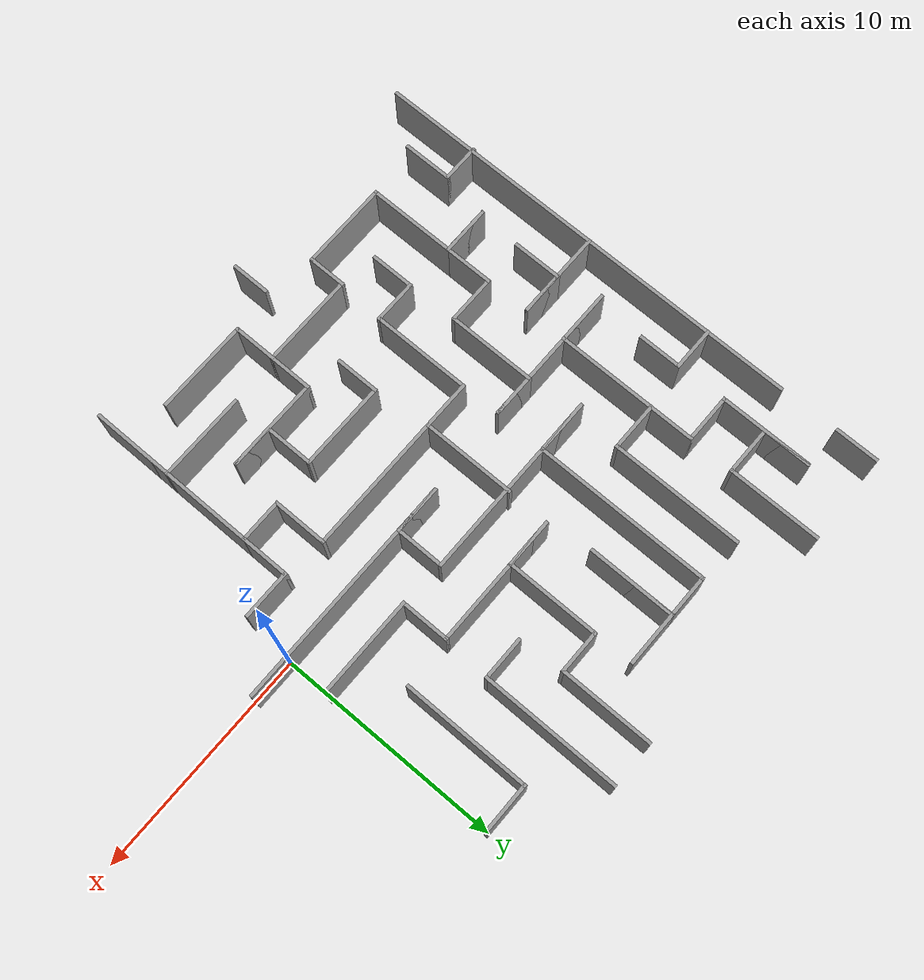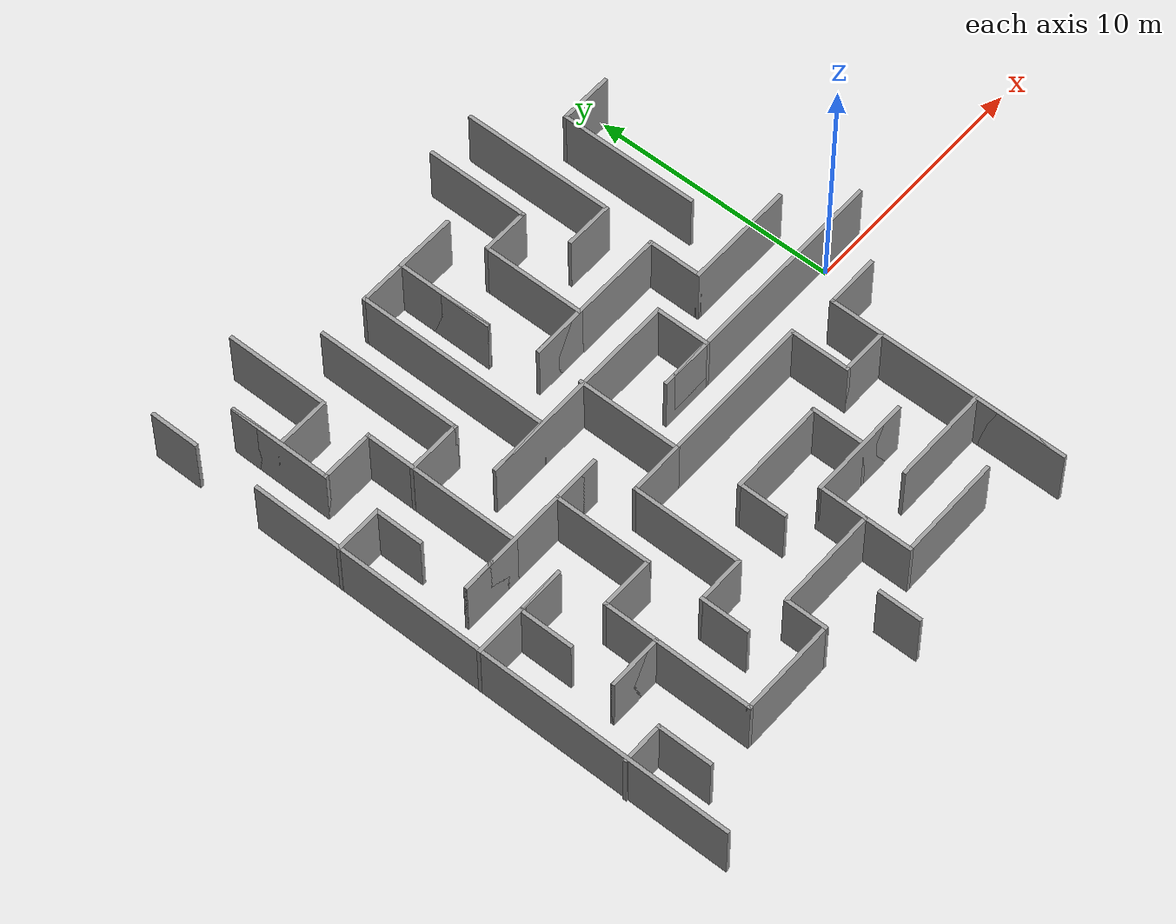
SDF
<sdf version="1.7">
 <model name="maze_model">
  <pose>0.068092 0.23364 0 0 -0 0</pose>
  <link name="Wall_100">
   <collision name="Wall_100_Collision">
    <geometry><box><size>2.25 0.15 2.5</size></box></geometry>
    <pose>0 0 1.25 0 -0 0</pose>
   </collision>
   <visual name="Wall_100_Visual">
    <pose>0 0 1.25 0 -0 0</pose>
    <geometry><box><size>2.25 0.15 2.5</size></box></geometry>
    <material>
     <script><uri>file://media/materials/scripts/gazebo.material</uri><name>Gazebo/Grey</name></script>
     <ambient>1 1 1 1</ambient>
    </material>
    <meta><layer>0</layer></meta>
   </visual>
   <pose>-9.14508 4.06765 0 0 -0 3.14159</pose>
  </link>
  <link name="Wall_101">
   <collision name="Wall_101_Collision">
    <geometry><box><size>6 0.15 2.5</size></box></geometry>
    <pose>0 0 1.25 0 -0 0</pose>
   </collision>
   <visual name="Wall_101_Visual">
    <pose>0 0 1.25 0 -0 0</pose>
    <geometry><box><size>6 0.15 2.5</size></box></geometry>
    <material>
     <script><uri>file://media/materials/scripts/gazebo.material</uri><name>Gazebo/Grey</name></script>
     <ambient>1 1 1 1</ambient>
    </material>
    <meta><layer>0</layer></meta>
   </visual>
   <pose>-7.27008 4.06765 0 0 -0 0</pose>
  </link>
  <link name="Wall_102">
   <collision name="Wall_102_Collision">
    <geometry><box><size>2.25 0.15 2.5</size></box></geometry>
    <pose>0 0 1.25 0 -0 0</pose>
   </collision>
   <visual name="Wall_102_Visual">
    <pose>0 0 1.25 0 -0 0</pose>
    <geometry><box><size>2.25 0.15 2.5</size></box></geometry>
    <material>
     <script><uri>file://media/materials/scripts/gazebo.material</uri><name>Gazebo/Grey</name></script>
     <ambient>1 1 1 1</ambient>
    </material>
    <meta><layer>0</layer></meta>
   </visual>
   <pose>-4.34508 3.01765 0 0 -0 -1.5708</pose>
  </link>
  <link name="Wall_103">
   <collision name="Wall_103_Collision">
    <geometry><box><size>4.5 0.15 2.5</size></box></geometry>
    <pose>0 0 1.25 0 -0 0</pose>
   </collision>
   <visual name="Wall_103_Visual">
    <pose>0 0 1.25 0 -0 0</pose>
    <geometry><box><size>4.5 0.15 2.5</size></box></geometry>
    <material>
     <script><uri>file://media/materials/scripts/gazebo.material</uri><name>Gazebo/Grey</name></script>
     <ambient>1 1 1 1</ambient>
    </material>
    <meta><layer>0</layer></meta>
   </visual>
   <pose>-2.17008 1.96765 0 0 -0 0</pose>
  </link>
  <link name="Wall_109">
   <collision name="Wall_109_Collision">
    <geometry><box><size>2.25 0.15 2.5</size></box></geometry>
    <pose>0 0 1.25 0 -0 0</pose>
   </collision>
   <visual name="Wall_109_Visual">
    <pose>0 0 1.25 0 -0 0</pose>
    <geometry><box><size>2.25 0.15 2.5</size></box></geometry>
    <material>
     <script><uri>file://media/materials/scripts/gazebo.material</uri><name>Gazebo/Grey</name></script>
     <ambient>1 1 1 1</ambient>
    </material>
    <meta><layer>0</layer></meta>
   </visual>
   <pose>-1.04508 9.76765 0 0 -0 3.14159</pose>
  </link>
  <link name="Wall_110">
   <collision name="Wall_110_Collision">
    <geometry><box><size>5.75 0.15 2.5</size></box></geometry>
    <pose>0 0 1.25 0 -0 0</pose>
   </collision>
   <visual name="Wall_110_Visual">
    <pose>0 0 1.25 0 -0 0</pose>
    <geometry><box><size>5.75 0.15 2.5</size></box></geometry>
    <material>
     <script><uri>file://media/materials/scripts/gazebo.material</uri><name>Gazebo/Grey</name></script>
     <ambient>1 1 1 1</ambient>
    </material>
    <meta><layer>0</layer></meta>
   </visual>
   <pose>-2.09508 6.96765 0 0 -0 -1.5708</pose>
  </link>
  <link name="Wall_112">
   <collision name="Wall_112_Collision">
    <geometry><box><size>6.25 0.15 2.5</size></box></geometry>
    <pose>0 0 1.25 0 -0 0</pose>
   </collision>
   <visual name="Wall_112_Visual">
    <pose>0 0 1.25 0 -0 0</pose>
    <geometry><box><size>6.25 0.15 2.5</size></box></geometry>
    <material>
     <script><uri>file://media/materials/scripts/gazebo.material</uri><name>Gazebo/Grey</name></script>
     <ambient>1 1 1 1</ambient>
    </material>
    <meta><layer>0</layer></meta>
   </visual>
   <pose>-4.21466 9.21765 0 0 -0 -1.5708</pose>
  </link>
  <link name="Wall_113">
   <collision name="Wall_113_Collision">
    <geometry><box><size>2 0.15 2.5</size></box></geometry>
    <pose>0 0 1.25 0 -0 0</pose>
   </collision>
   <visual name="Wall_113_Visual">
    <pose>0 0 1.25 0 -0 0</pose>
    <geometry><box><size>2 0.15 2.5</size></box></geometry>
    <material>
     <script><uri>file://media/materials/scripts/gazebo.material</uri><name>Gazebo/Grey</name></script>
     <ambient>1 1 1 1</ambient>
    </material>
    <meta><layer>0</layer></meta>
   </visual>
   <pose>-5.13966 6.16765 0 0 -0 3.14159</pose>
  </link>
  <link name="Wall_19">
   <collision name="Wall_19_Collision">
    <geometry><box><size>20 0.15 2.5</size></box></geometry>
    <pose>0 0 1.25 0 -0 0</pose>
   </collision>
   <visual name="Wall_19_Visual">
    <pose>0 0 1.25 0 -0 0</pose>
    <geometry><box><size>20 0.15 2.5</size></box></geometry>
    <material>
     <script><uri>file://media/materials/scripts/gazebo.material</uri><name>Gazebo/Grey</name></script>
     <ambient>1 1 1 1</ambient>
    </material>
    <meta><layer>0</layer></meta>
   </visual>
   <pose>-20.265 -2.3346 0 0 -0 1.5708</pose>
  </link>
  <link name="Wall_21">
   <collision name="Wall_21_Collision">
    <geometry><box><size>2 0.15 2.5</size></box></geometry>
    <pose>0 0 1.25 0 -0 0</pose>
   </collision>
   <visual name="Wall_21_Visual">
    <pose>0 0 1.25 0 -0 0</pose>
    <geometry><box><size>2 0.15 2.5</size></box></geometry>
    <material>
     <script><uri>file://media/materials/scripts/gazebo.material</uri><name>Gazebo/Grey</name></script>
     <ambient>1 1 1 1</ambient>
    </material>
    <meta><layer>0</layer></meta>
   </visual>
   <pose>-20.335 11.2196 0 0 -0 -1.5708</pose>
  </link>
  <link name="Wall_23">
   <collision name="Wall_23_Collision">
    <geometry><box><size>4.25 0.15 2.5</size></box></geometry>
    <pose>0 0 1.25 0 -0 0</pose>
   </collision>
   <visual name="Wall_23_Visual">
    <pose>0 0 1.25 0 -0 0</pose>
    <geometry><box><size>4.25 0.15 2.5</size></box></geometry>
    <material>
     <script><uri>file://media/materials/scripts/gazebo.material</uri><name>Gazebo/Grey</name></script>
     <ambient>1 1 1 1</ambient>
    </material>
    <meta><layer>0</layer></meta>
   </visual>
   <pose>-16.3972 10.2177 0 0 -0 -1.5708</pose>
  </link>
  <link name="Wall_24">
   <collision name="Wall_24_Collision">
    <geometry><box><size>2.25 0.15 2.5</size></box></geometry>
    <pose>0 0 1.25 0 -0 0</pose>
   </collision>
   <visual name="Wall_24_Visual">
    <pose>0 0 1.25 0 -0 0</pose>
    <geometry><box><size>2.25 0.15 2.5</size></box></geometry>
    <material>
     <script><uri>file://media/materials/scripts/gazebo.material</uri><name>Gazebo/Grey</name></script>
     <ambient>1 1 1 1</ambient>
    </material>
    <meta><layer>0</layer></meta>
   </visual>
   <pose>-17.4472 8.16765 0 0 -0 3.14159</pose>
  </link>
  <link name="Wall_25">
   <collision name="Wall_25_Collision">
    <geometry><box><size>2.25 0.15 2.5</size></box></geometry>
    <pose>0 0 1.25 0 -0 0</pose>
   </collision>
   <visual name="Wall_25_Visual">
    <pose>0 0 1.25 0 -0 0</pose>
    <geometry><box><size>2.25 0.15 2.5</size></box></geometry>
    <material>
     <script><uri>file://media/materials/scripts/gazebo.material</uri><name>Gazebo/Grey</name></script>
     <ambient>1 1 1 1</ambient>
    </material>
    <meta><layer>0</layer></meta>
   </visual>
   <pose>-18.4972 9.21765 0 0 -0 1.5708</pose>
  </link>
  <link name="Wall_26">
   <collision name="Wall_26_Collision">
    <geometry><box><size>4.25 0.15 2.5</size></box></geometry>
    <pose>0 0 1.25 0 -0 0</pose>
   </collision>
   <visual name="Wall_26_Visual">
    <pose>0 0 1.25 0 -0 0</pose>
    <geometry><box><size>4.25 0.15 2.5</size></box></geometry>
    <material>
     <script><uri>file://media/materials/scripts/gazebo.material</uri><name>Gazebo/Grey</name></script>
     <ambient>1 1 1 1</ambient>
    </material>
    <meta><layer>0</layer></meta>
   </visual>
   <pose>-18.4972 8.21765 0 0 -0 -1.5708</pose>
  </link>
  <link name="Wall_27">
   <collision name="Wall_27_Collision">
    <geometry><box><size>2.25 0.15 2.5</size></box></geometry>
    <pose>0 0 1.25 0 -0 0</pose>
   </collision>
   <visual name="Wall_27_Visual">
    <pose>0 0 1.25 0 -0 0</pose>
    <geometry><box><size>2.25 0.15 2.5</size></box></geometry>
    <material>
     <script><uri>file://media/materials/scripts/gazebo.material</uri><name>Gazebo/Grey</name></script>
     <ambient>1 1 1 1</ambient>
    </material>
    <meta><layer>0</layer></meta>
   </visual>
   <pose>-17.4472 6.16765 0 0 -0 0</pose>
  </link>
  <link name="Wall_28">
   <collision name="Wall_28_Collision">
    <geometry><box><size>6.5 0.15 2.5</size></box></geometry>
    <pose>0 0 1.25 0 -0 0</pose>
   </collision>
   <visual name="Wall_28_Visual">
    <pose>0 0 1.25 0 -0 0</pose>
    <geometry><box><size>6.5 0.15 2.5</size></box></geometry>
    <material>
     <script><uri>file://media/materials/scripts/gazebo.material</uri><name>Gazebo/Grey</name></script>
     <ambient>1 1 1 1</ambient>
    </material>
    <meta><layer>0</layer></meta>
   </visual>
   <pose>-16.3972 2.99265 0 0 -0 -1.5708</pose>
  </link>
  <link name="Wall_29">
   <collision name="Wall_29_Collision">
    <geometry><box><size>2.5 0.15 2.5</size></box></geometry>
    <pose>0 0 1.25 0 -0 0</pose>
   </collision>
   <visual name="Wall_29_Visual">
    <pose>0 0 1.25 0 -0 0</pose>
    <geometry><box><size>2.5 0.15 2.5</size></box></geometry>
    <material>
     <script><uri>file://media/materials/scripts/gazebo.material</uri><name>Gazebo/Grey</name></script>
     <ambient>1 1 1 1</ambient>
    </material>
    <meta><layer>0</layer></meta>
   </visual>
   <pose>-17.5722 -0.182347 0 0 -0 3.14159</pose>
  </link>
  <link name="Wall_30">
   <collision name="Wall_30_Collision">
    <geometry><box><size>6.5 0.15 2.5</size></box></geometry>
    <pose>0 0 1.25 0 -0 0</pose>
   </collision>
   <visual name="Wall_30_Visual">
    <pose>0 0 1.25 0 -0 0</pose>
    <geometry><box><size>6.5 0.15 2.5</size></box></geometry>
    <material>
     <script><uri>file://media/materials/scripts/gazebo.material</uri><name>Gazebo/Grey</name></script>
     <ambient>1 1 1 1</ambient>
    </material>
    <meta><layer>0</layer></meta>
   </visual>
   <pose>-15.5722 -0.182347 0 0 -0 0</pose>
  </link>
  <link name="Wall_31">
   <collision name="Wall_31_Collision">
    <geometry><box><size>2 0.15 2.5</size></box></geometry>
    <pose>0 0 1.25 0 -0 0</pose>
   </collision>
   <visual name="Wall_31_Visual">
    <pose>0 0 1.25 0 -0 0</pose>
    <geometry><box><size>2 0.15 2.5</size></box></geometry>
    <material>
     <script><uri>file://media/materials/scripts/gazebo.material</uri><name>Gazebo/Grey</name></script>
     <ambient>1 1 1 1</ambient>
    </material>
    <meta><layer>0</layer></meta>
   </visual>
   <pose>-13.3222 -0.182347 0 0 -0 3.14159</pose>
  </link>
  <link name="Wall_32">
   <collision name="Wall_32_Collision">
    <geometry><box><size>4 0.15 2.5</size></box></geometry>
    <pose>0 0 1.25 0 -0 0</pose>
   </collision>
   <visual name="Wall_32_Visual">
    <pose>0 0 1.25 0 -0 0</pose>
    <geometry><box><size>4 0.15 2.5</size></box></geometry>
    <material>
     <script><uri>file://media/materials/scripts/gazebo.material</uri><name>Gazebo/Grey</name></script>
     <ambient>1 1 1 1</ambient>
    </material>
    <meta><layer>0</layer></meta>
   </visual>
   <pose>-14.2472 -2.10735 0 0 -0 -1.5708</pose>
  </link>
  <link name="Wall_33">
   <collision name="Wall_33_Collision">
    <geometry><box><size>2.25 0.15 2.5</size></box></geometry>
    <pose>0 0 1.25 0 -0 0</pose>
   </collision>
   <visual name="Wall_33_Visual">
    <pose>0 0 1.25 0 -0 0</pose>
    <geometry><box><size>2.25 0.15 2.5</size></box></geometry>
    <material>
     <script><uri>file://media/materials/scripts/gazebo.material</uri><name>Gazebo/Grey</name></script>
     <ambient>1 1 1 1</ambient>
    </material>
    <meta><layer>0</layer></meta>
   </visual>
   <pose>-15.2972 -4.03235 0 0 -0 3.14159</pose>
  </link>
  <link name="Wall_34">
   <collision name="Wall_34_Collision">
    <geometry><box><size>2.25 0.15 2.5</size></box></geometry>
    <pose>0 0 1.25 0 -0 0</pose>
   </collision>
   <visual name="Wall_34_Visual">
    <pose>0 0 1.25 0 -0 0</pose>
    <geometry><box><size>2.25 0.15 2.5</size></box></geometry>
    <material>
     <script><uri>file://media/materials/scripts/gazebo.material</uri><name>Gazebo/Grey</name></script>
     <ambient>1 1 1 1</ambient>
    </material>
    <meta><layer>0</layer></meta>
   </visual>
   <pose>-16.3472 -5.08235 0 0 -0 -1.5708</pose>
  </link>
  <link name="Wall_35">
   <collision name="Wall_35_Collision">
    <geometry><box><size>2.25 0.15 2.5</size></box></geometry>
    <pose>0 0 1.25 0 -0 0</pose>
   </collision>
   <visual name="Wall_35_Visual">
    <pose>0 0 1.25 0 -0 0</pose>
    <geometry><box><size>2.25 0.15 2.5</size></box></geometry>
    <material>
     <script><uri>file://media/materials/scripts/gazebo.material</uri><name>Gazebo/Grey</name></script>
     <ambient>1 1 1 1</ambient>
    </material>
    <meta><layer>0</layer></meta>
   </visual>
   <pose>-17.3972 -6.13235 0 0 -0 3.14159</pose>
  </link>
  <link name="Wall_36">
   <collision name="Wall_36_Collision">
    <geometry><box><size>2.25 0.15 2.5</size></box></geometry>
    <pose>0 0 1.25 0 -0 0</pose>
   </collision>
   <visual name="Wall_36_Visual">
    <pose>0 0 1.25 0 -0 0</pose>
    <geometry><box><size>2.25 0.15 2.5</size></box></geometry>
    <material>
     <script><uri>file://media/materials/scripts/gazebo.material</uri><name>Gazebo/Grey</name></script>
     <ambient>1 1 1 1</ambient>
    </material>
    <meta><layer>0</layer></meta>
   </visual>
   <pose>-17.3972 -6.13235 0 0 -0 0</pose>
  </link>
  <link name="Wall_37">
   <collision name="Wall_37_Collision">
    <geometry><box><size>4 0.15 2.5</size></box></geometry>
    <pose>0 0 1.25 0 -0 0</pose>
   </collision>
   <visual name="Wall_37_Visual">
    <pose>0 0 1.25 0 -0 0</pose>
    <geometry><box><size>4 0.15 2.5</size></box></geometry>
    <material>
     <script><uri>file://media/materials/scripts/gazebo.material</uri><name>Gazebo/Grey</name></script>
     <ambient>1 1 1 1</ambient>
    </material>
    <meta><layer>0</layer></meta>
   </visual>
   <pose>-16.3472 -8.05735 0 0 -0 -1.5708</pose>
  </link>
  <link name="Wall_38">
   <collision name="Wall_38_Collision">
    <geometry><box><size>4 0.15 2.5</size></box></geometry>
    <pose>0 0 1.25 0 -0 0</pose>
   </collision>
   <visual name="Wall_38_Visual">
    <pose>0 0 1.25 0 -0 0</pose>
    <geometry><box><size>4 0.15 2.5</size></box></geometry>
    <material>
     <script><uri>file://media/materials/scripts/gazebo.material</uri><name>Gazebo/Grey</name></script>
     <ambient>1 1 1 1</ambient>
    </material>
    <meta><layer>0</layer></meta>
   </visual>
   <pose>-14.4222 -9.98235 0 0 -0 0</pose>
  </link>
  <link name="Wall_39">
   <collision name="Wall_39_Collision">
    <geometry><box><size>1.75 0.15 2.5</size></box></geometry>
    <pose>0 0 1.25 0 -0 0</pose>
   </collision>
   <visual name="Wall_39_Visual">
    <pose>0 0 1.25 0 -0 0</pose>
    <geometry><box><size>1.75 0.15 2.5</size></box></geometry>
    <material>
     <script><uri>file://media/materials/scripts/gazebo.material</uri><name>Gazebo/Grey</name></script>
     <ambient>1 1 1 1</ambient>
    </material>
    <meta><layer>0</layer></meta>
   </visual>
   <pose>-12.4972 -9.18235 0 0 -0 1.5708</pose>
  </link>
  <link name="Wall_40">
   <collision name="Wall_40_Collision">
    <geometry><box><size>4.25 0.15 2.5</size></box></geometry>
    <pose>0 0 1.25 0 -0 0</pose>
   </collision>
   <visual name="Wall_40_Visual">
    <pose>0 0 1.25 0 -0 0</pose>
    <geometry><box><size>4.25 0.15 2.5</size></box></geometry>
    <material>
     <script><uri>file://media/materials/scripts/gazebo.material</uri><name>Gazebo/Grey</name></script>
     <ambient>1 1 1 1</ambient>
    </material>
    <meta><layer>0</layer></meta>
   </visual>
   <pose>-10.4472 -8.38235 0 0 -0 0</pose>
  </link>
  <link name="Wall_41">
   <collision name="Wall_41_Collision">
    <geometry><box><size>2 0.15 2.5</size></box></geometry>
    <pose>0 0 1.25 0 -0 0</pose>
   </collision>
   <visual name="Wall_41_Visual">
    <pose>0 0 1.25 0 -0 0</pose>
    <geometry><box><size>2 0.15 2.5</size></box></geometry>
    <material>
     <script><uri>file://media/materials/scripts/gazebo.material</uri><name>Gazebo/Grey</name></script>
     <ambient>1 1 1 1</ambient>
    </material>
    <meta><layer>0</layer></meta>
   </visual>
   <pose>-8.39718 -9.30735 0 0 -0 -1.5708</pose>
  </link>
  <link name="Wall_42">
   <collision name="Wall_42_Collision">
    <geometry><box><size>4.25 0.15 2.5</size></box></geometry>
    <pose>0 0 1.25 0 -0 0</pose>
   </collision>
   <visual name="Wall_42_Visual">
    <pose>0 0 1.25 0 -0 0</pose>
    <geometry><box><size>4.25 0.15 2.5</size></box></geometry>
    <material>
     <script><uri>file://media/materials/scripts/gazebo.material</uri><name>Gazebo/Grey</name></script>
     <ambient>1 1 1 1</ambient>
    </material>
    <meta><layer>0</layer></meta>
   </visual>
   <pose>-6.34718 -10.2323 0 0 -0 0</pose>
  </link>
  <link name="Wall_44">
   <collision name="Wall_44_Collision">
    <geometry><box><size>2 0.15 2.5</size></box></geometry>
    <pose>0 0 1.25 0 -0 0</pose>
   </collision>
   <visual name="Wall_44_Visual">
    <pose>0 0 1.25 0 -0 0</pose>
    <geometry><box><size>2 0.15 2.5</size></box></geometry>
    <material>
     <script><uri>file://media/materials/scripts/gazebo.material</uri><name>Gazebo/Grey</name></script>
     <ambient>1 1 1 1</ambient>
    </material>
    <meta><layer>0</layer></meta>
   </visual>
   <pose>-8.39718 -7.45735 0 0 -0 1.5708</pose>
  </link>
  <link name="Wall_45">
   <collision name="Wall_45_Collision">
    <geometry><box><size>4.25 0.15 2.5</size></box></geometry>
    <pose>0 0 1.25 0 -0 0</pose>
   </collision>
   <visual name="Wall_45_Visual">
    <pose>0 0 1.25 0 -0 0</pose>
    <geometry><box><size>4.25 0.15 2.5</size></box></geometry>
    <material>
     <script><uri>file://media/materials/scripts/gazebo.material</uri><name>Gazebo/Grey</name></script>
     <ambient>1 1 1 1</ambient>
    </material>
    <meta><layer>0</layer></meta>
   </visual>
   <pose>-6.34718 -6.53235 0 0 -0 0</pose>
  </link>
  <link name="Wall_46">
   <collision name="Wall_46_Collision">
    <geometry><box><size>2 0.15 2.5</size></box></geometry>
    <pose>0 0 1.25 0 -0 0</pose>
   </collision>
   <visual name="Wall_46_Visual">
    <pose>0 0 1.25 0 -0 0</pose>
    <geometry><box><size>2 0.15 2.5</size></box></geometry>
    <material>
     <script><uri>file://media/materials/scripts/gazebo.material</uri><name>Gazebo/Grey</name></script>
     <ambient>1 1 1 1</ambient>
    </material>
    <meta><layer>0</layer></meta>
   </visual>
   <pose>-5.22218 -6.53235 0 0 -0 3.14159</pose>
  </link>
  <link name="Wall_47">
   <collision name="Wall_47_Collision">
    <geometry><box><size>2.25 0.15 2.5</size></box></geometry>
    <pose>0 0 1.25 0 -0 0</pose>
   </collision>
   <visual name="Wall_47_Visual">
    <pose>0 0 1.25 0 -0 0</pose>
    <geometry><box><size>2.25 0.15 2.5</size></box></geometry>
    <material>
     <script><uri>file://media/materials/scripts/gazebo.material</uri><name>Gazebo/Grey</name></script>
     <ambient>1 1 1 1</ambient>
    </material>
    <meta><layer>0</layer></meta>
   </visual>
   <pose>-6.14718 -5.48235 0 0 -0 1.5708</pose>
  </link>
  <link name="Wall_48">
   <collision name="Wall_48_Collision">
    <geometry><box><size>4 0.15 2.5</size></box></geometry>
    <pose>0 0 1.25 0 -0 0</pose>
   </collision>
   <visual name="Wall_48_Visual">
    <pose>0 0 1.25 0 -0 0</pose>
    <geometry><box><size>4 0.15 2.5</size></box></geometry>
    <material>
     <script><uri>file://media/materials/scripts/gazebo.material</uri><name>Gazebo/Grey</name></script>
     <ambient>1 1 1 1</ambient>
    </material>
    <meta><layer>0</layer></meta>
   </visual>
   <pose>-8.07218 -4.43235 0 0 -0 3.14159</pose>
  </link>
  <link name="Wall_49">
   <collision name="Wall_49_Collision">
    <geometry><box><size>2 0.15 2.5</size></box></geometry>
    <pose>0 0 1.25 0 -0 0</pose>
   </collision>
   <visual name="Wall_49_Visual">
    <pose>0 0 1.25 0 -0 0</pose>
    <geometry><box><size>2 0.15 2.5</size></box></geometry>
    <material>
     <script><uri>file://media/materials/scripts/gazebo.material</uri><name>Gazebo/Grey</name></script>
     <ambient>1 1 1 1</ambient>
    </material>
    <meta><layer>0</layer></meta>
   </visual>
   <pose>-9.99718 -5.35735 0 0 -0 -1.5708</pose>
  </link>
  <link name="Wall_51">
   <collision name="Wall_51_Collision">
    <geometry><box><size>2 0.15 2.5</size></box></geometry>
    <pose>0 0 1.25 0 -0 0</pose>
   </collision>
   <visual name="Wall_51_Visual">
    <pose>0 0 1.25 0 -0 0</pose>
    <geometry><box><size>2 0.15 2.5</size></box></geometry>
    <material>
     <script><uri>file://media/materials/scripts/gazebo.material</uri><name>Gazebo/Grey</name></script>
     <ambient>1 1 1 1</ambient>
    </material>
    <meta><layer>0</layer></meta>
   </visual>
   <pose>-19.3484 3.96139 0 0 -0 0</pose>
  </link>
  <link name="Wall_52">
   <collision name="Wall_52_Collision">
    <geometry><box><size>2 0.15 2.5</size></box></geometry>
    <pose>0 0 1.25 0 -0 0</pose>
   </collision>
   <visual name="Wall_52_Visual">
    <pose>0 0 1.25 0 -0 0</pose>
    <geometry><box><size>2 0.15 2.5</size></box></geometry>
    <material>
     <script><uri>file://media/materials/scripts/gazebo.material</uri><name>Gazebo/Grey</name></script>
     <ambient>1 1 1 1</ambient>
    </material>
    <meta><layer>0</layer></meta>
   </visual>
   <pose>-18.4234 3.03639 0 0 -0 -1.5708</pose>
  </link>
  <link name="Wall_54">
   <collision name="Wall_54_Collision">
    <geometry><box><size>4 0.15 2.5</size></box></geometry>
    <pose>0 0 1.25 0 -0 0</pose>
   </collision>
   <visual name="Wall_54_Visual">
    <pose>0 0 1.25 0 -0 0</pose>
    <geometry><box><size>4 0.15 2.5</size></box></geometry>
    <material>
     <script><uri>file://media/materials/scripts/gazebo.material</uri><name>Gazebo/Grey</name></script>
     <ambient>1 1 1 1</ambient>
    </material>
    <meta><layer>0</layer></meta>
   </visual>
   <pose>-18.3484 -2.06834 0 0 -0 0</pose>
  </link>
  <link name="Wall_55">
   <collision name="Wall_55_Collision">
    <geometry><box><size>2 0.15 2.5</size></box></geometry>
    <pose>0 0 1.25 0 -0 0</pose>
   </collision>
   <visual name="Wall_55_Visual">
    <pose>0 0 1.25 0 -0 0</pose>
    <geometry><box><size>2 0.15 2.5</size></box></geometry>
    <material>
     <script><uri>file://media/materials/scripts/gazebo.material</uri><name>Gazebo/Grey</name></script>
     <ambient>1 1 1 1</ambient>
    </material>
    <meta><layer>0</layer></meta>
   </visual>
   <pose>-17.3484 -2.06834 0 0 -0 3.14159</pose>
  </link>
  <link name="Wall_56">
   <collision name="Wall_56_Collision">
    <geometry><box><size>2.25 0.15 2.5</size></box></geometry>
    <pose>0 0 1.25 0 -0 0</pose>
   </collision>
   <visual name="Wall_56_Visual">
    <pose>0 0 1.25 0 -0 0</pose>
    <geometry><box><size>2.25 0.15 2.5</size></box></geometry>
    <material>
     <script><uri>file://media/materials/scripts/gazebo.material</uri><name>Gazebo/Grey</name></script>
     <ambient>1 1 1 1</ambient>
    </material>
    <meta><layer>0</layer></meta>
   </visual>
   <pose>-18.2734 -3.11834 0 0 -0 -1.5708</pose>
  </link>
  <link name="Wall_58">
   <collision name="Wall_58_Collision">
    <geometry><box><size>1.75 0.15 2.5</size></box></geometry>
    <pose>0 0 1.25 0 -0 0</pose>
   </collision>
   <visual name="Wall_58_Visual">
    <pose>0 0 1.25 0 -0 0</pose>
    <geometry><box><size>1.75 0.15 2.5</size></box></geometry>
    <material>
     <script><uri>file://media/materials/scripts/gazebo.material</uri><name>Gazebo/Grey</name></script>
     <ambient>1 1 1 1</ambient>
    </material>
    <meta><layer>0</layer></meta>
   </visual>
   <pose>-19.535 -8.22113 0 0 -0 0</pose>
  </link>
  <link name="Wall_59">
   <collision name="Wall_59_Collision">
    <geometry><box><size>2.25 0.15 2.5</size></box></geometry>
    <pose>0 0 1.25 0 -0 0</pose>
   </collision>
   <visual name="Wall_59_Visual">
    <pose>0 0 1.25 0 -0 0</pose>
    <geometry><box><size>2.25 0.15 2.5</size></box></geometry>
    <material>
     <script><uri>file://media/materials/scripts/gazebo.material</uri><name>Gazebo/Grey</name></script>
     <ambient>1 1 1 1</ambient>
    </material>
    <meta><layer>0</layer></meta>
   </visual>
   <pose>-18.735 -9.27113 0 0 -0 -1.5708</pose>
  </link>
  <link name="Wall_61">
   <collision name="Wall_61_Collision">
    <geometry><box><size>6 0.15 2.5</size></box></geometry>
    <pose>0 0 1.25 0 -0 0</pose>
   </collision>
   <visual name="Wall_61_Visual">
    <pose>0 0 1.25 0 -0 0</pose>
    <geometry><box><size>6 0.15 2.5</size></box></geometry>
    <material>
     <script><uri>file://media/materials/scripts/gazebo.material</uri><name>Gazebo/Grey</name></script>
     <ambient>1 1 1 1</ambient>
    </material>
    <meta><layer>0</layer></meta>
   </visual>
   <pose>-14.3052 7.12765 0 0 -0 -1.5708</pose>
  </link>
  <link name="Wall_62">
   <collision name="Wall_62_Collision">
    <geometry><box><size>2.25 0.15 2.5</size></box></geometry>
    <pose>0 0 1.25 0 -0 0</pose>
   </collision>
   <visual name="Wall_62_Visual">
    <pose>0 0 1.25 0 -0 0</pose>
    <geometry><box><size>2.25 0.15 2.5</size></box></geometry>
    <material>
     <script><uri>file://media/materials/scripts/gazebo.material</uri><name>Gazebo/Grey</name></script>
     <ambient>1 1 1 1</ambient>
    </material>
    <meta><layer>0</layer></meta>
   </visual>
   <pose>-15.3552 4.20265 0 0 -0 3.14159</pose>
  </link>
  <link name="Wall_64">
   <collision name="Wall_64_Collision">
    <geometry><box><size>2.5 0.15 2.5</size></box></geometry>
    <pose>0 0 1.25 0 -0 0</pose>
   </collision>
   <visual name="Wall_64_Visual">
    <pose>0 0 1.25 0 -0 0</pose>
    <geometry><box><size>2.5 0.15 2.5</size></box></geometry>
    <material>
     <script><uri>file://media/materials/scripts/gazebo.material</uri><name>Gazebo/Grey</name></script>
     <ambient>1 1 1 1</ambient>
    </material>
    <meta><layer>0</layer></meta>
   </visual>
   <pose>-9.32744 9.92959 0 0 -0 3.14159</pose>
  </link>
  <link name="Wall_65">
   <collision name="Wall_65_Collision">
    <geometry><box><size>4 0.15 2.5</size></box></geometry>
    <pose>0 0 1.25 0 -0 0</pose>
   </collision>
   <visual name="Wall_65_Visual">
    <pose>0 0 1.25 0 -0 0</pose>
    <geometry><box><size>4 0.15 2.5</size></box></geometry>
    <material>
     <script><uri>file://media/materials/scripts/gazebo.material</uri><name>Gazebo/Grey</name></script>
     <ambient>1 1 1 1</ambient>
    </material>
    <meta><layer>0</layer></meta>
   </visual>
   <pose>-10.5024 8.00459 0 0 -0 -1.5708</pose>
  </link>
  <link name="Wall_66">
   <collision name="Wall_66_Collision">
    <geometry><box><size>4 0.15 2.5</size></box></geometry>
    <pose>0 0 1.25 0 -0 0</pose>
   </collision>
   <visual name="Wall_66_Visual">
    <pose>0 0 1.25 0 -0 0</pose>
    <geometry><box><size>4 0.15 2.5</size></box></geometry>
    <material>
     <script><uri>file://media/materials/scripts/gazebo.material</uri><name>Gazebo/Grey</name></script>
     <ambient>1 1 1 1</ambient>
    </material>
    <meta><layer>0</layer></meta>
   </visual>
   <pose>-10.5024 8.00459 0 0 -0 1.5708</pose>
  </link>
  <link name="Wall_67">
   <collision name="Wall_67_Collision">
    <geometry><box><size>2 0.15 2.5</size></box></geometry>
    <pose>0 0 1.25 0 -0 0</pose>
   </collision>
   <visual name="Wall_67_Visual">
    <pose>0 0 1.25 0 -0 0</pose>
    <geometry><box><size>2 0.15 2.5</size></box></geometry>
    <material>
     <script><uri>file://media/materials/scripts/gazebo.material</uri><name>Gazebo/Grey</name></script>
     <ambient>1 1 1 1</ambient>
    </material>
    <meta><layer>0</layer></meta>
   </visual>
   <pose>-11.4274 9.92959 0 0 -0 3.14159</pose>
  </link>
  <link name="Wall_68">
   <collision name="Wall_68_Collision">
    <geometry><box><size>8 0.15 2.5</size></box></geometry>
    <pose>0 0 1.25 0 -0 0</pose>
   </collision>
   <visual name="Wall_68_Visual">
    <pose>0 0 1.25 0 -0 0</pose>
    <geometry><box><size>8 0.15 2.5</size></box></geometry>
    <material>
     <script><uri>file://media/materials/scripts/gazebo.material</uri><name>Gazebo/Grey</name></script>
     <ambient>1 1 1 1</ambient>
    </material>
    <meta><layer>0</layer></meta>
   </visual>
   <pose>-12.3524 6.00459 0 0 -0 -1.5708</pose>
  </link>
  <link name="Wall_69">
   <collision name="Wall_69_Collision">
    <geometry><box><size>2.5 0.15 2.5</size></box></geometry>
    <pose>0 0 1.25 0 -0 0</pose>
   </collision>
   <visual name="Wall_69_Visual">
    <pose>0 0 1.25 0 -0 0</pose>
    <geometry><box><size>2.5 0.15 2.5</size></box></geometry>
    <material>
     <script><uri>file://media/materials/scripts/gazebo.material</uri><name>Gazebo/Grey</name></script>
     <ambient>1 1 1 1</ambient>
    </material>
    <meta><layer>0</layer></meta>
   </visual>
   <pose>-13.5274 2.07959 0 0 -0 3.14159</pose>
  </link>
  <link name="Wall_70">
   <collision name="Wall_70_Collision">
    <geometry><box><size>8.5 0.15 2.5</size></box></geometry>
    <pose>0 0 1.25 0 -0 0</pose>
   </collision>
   <visual name="Wall_70_Visual">
    <pose>0 0 1.25 0 -0 0</pose>
    <geometry><box><size>8.5 0.15 2.5</size></box></geometry>
    <material>
     <script><uri>file://media/materials/scripts/gazebo.material</uri><name>Gazebo/Grey</name></script>
     <ambient>1 1 1 1</ambient>
    </material>
    <meta><layer>0</layer></meta>
   </visual>
   <pose>-10.5274 2.07959 0 0 -0 0</pose>
  </link>
  <link name="Wall_71">
   <collision name="Wall_71_Collision">
    <geometry><box><size>2.25 0.15 2.5</size></box></geometry>
    <pose>0 0 1.25 0 -0 0</pose>
   </collision>
   <visual name="Wall_71_Visual">
    <pose>0 0 1.25 0 -0 0</pose>
    <geometry><box><size>2.25 0.15 2.5</size></box></geometry>
    <material>
     <script><uri>file://media/materials/scripts/gazebo.material</uri><name>Gazebo/Grey</name></script>
     <ambient>1 1 1 1</ambient>
    </material>
    <meta><layer>0</layer></meta>
   </visual>
   <pose>-6.35244 1.02959 0 0 -0 -1.5708</pose>
  </link>
  <link name="Wall_72">
   <collision name="Wall_72_Collision">
    <geometry><box><size>2.25 0.15 2.5</size></box></geometry>
    <pose>0 0 1.25 0 -0 0</pose>
   </collision>
   <visual name="Wall_72_Visual">
    <pose>0 0 1.25 0 -0 0</pose>
    <geometry><box><size>2.25 0.15 2.5</size></box></geometry>
    <material>
     <script><uri>file://media/materials/scripts/gazebo.material</uri><name>Gazebo/Grey</name></script>
     <ambient>1 1 1 1</ambient>
    </material>
    <meta><layer>0</layer></meta>
   </visual>
   <pose>-7.40244 -0.020406 0 0 -0 3.14159</pose>
  </link>
  <link name="Wall_73">
   <collision name="Wall_73_Collision">
    <geometry><box><size>10.5 0.15 2.5</size></box></geometry>
    <pose>0 0 1.25 0 -0 0</pose>
   </collision>
   <visual name="Wall_73_Visual">
    <pose>0 0 1.25 0 -0 0</pose>
    <geometry><box><size>10.5 0.15 2.5</size></box></geometry>
    <material>
     <script><uri>file://media/materials/scripts/gazebo.material</uri><name>Gazebo/Grey</name></script>
     <ambient>1 1 1 1</ambient>
    </material>
    <meta><layer>0</layer></meta>
   </visual>
   <pose>-3.27744 -0.020406 0 0 -0 0</pose>
  </link>
  <link name="Wall_79">
   <collision name="Wall_79_Collision">
    <geometry><box><size>4.25 0.15 2.5</size></box></geometry>
    <pose>0 0 1.25 0 -0 0</pose>
   </collision>
   <visual name="Wall_79_Visual">
    <pose>0 0 1.25 0 -0 0</pose>
    <geometry><box><size>4.25 0.15 2.5</size></box></geometry>
    <material>
     <script><uri>file://media/materials/scripts/gazebo.material</uri><name>Gazebo/Grey</name></script>
     <ambient>1 1 1 1</ambient>
    </material>
    <meta><layer>0</layer></meta>
   </visual>
   <pose>-10.2444 0.127081 0 0 -0 -1.5708</pose>
  </link>
  <link name="Wall_80">
   <collision name="Wall_80_Collision">
    <geometry><box><size>2.25 0.15 2.5</size></box></geometry>
    <pose>0 0 1.25 0 -0 0</pose>
   </collision>
   <visual name="Wall_80_Visual">
    <pose>0 0 1.25 0 -0 0</pose>
    <geometry><box><size>2.25 0.15 2.5</size></box></geometry>
    <material>
     <script><uri>file://media/materials/scripts/gazebo.material</uri><name>Gazebo/Grey</name></script>
     <ambient>1 1 1 1</ambient>
    </material>
    <meta><layer>0</layer></meta>
   </visual>
   <pose>-11.2944 -1.92292 0 0 -0 3.14159</pose>
  </link>
  <link name="Wall_81">
   <collision name="Wall_81_Collision">
    <geometry><box><size>4.5 0.15 2.5</size></box></geometry>
    <pose>0 0 1.25 0 -0 0</pose>
   </collision>
   <visual name="Wall_81_Visual">
    <pose>0 0 1.25 0 -0 0</pose>
    <geometry><box><size>4.5 0.15 2.5</size></box></geometry>
    <material>
     <script><uri>file://media/materials/scripts/gazebo.material</uri><name>Gazebo/Grey</name></script>
     <ambient>1 1 1 1</ambient>
    </material>
    <meta><layer>0</layer></meta>
   </visual>
   <pose>-12.3444 -4.09792 0 0 -0 -1.5708</pose>
  </link>
  <link name="Wall_82">
   <collision name="Wall_82_Collision">
    <geometry><box><size>2 0.15 2.5</size></box></geometry>
    <pose>0 0 1.25 0 -0 0</pose>
   </collision>
   <visual name="Wall_82_Visual">
    <pose>0 0 1.25 0 -0 0</pose>
    <geometry><box><size>2 0.15 2.5</size></box></geometry>
    <material>
     <script><uri>file://media/materials/scripts/gazebo.material</uri><name>Gazebo/Grey</name></script>
     <ambient>1 1 1 1</ambient>
    </material>
    <meta><layer>0</layer></meta>
   </visual>
   <pose>-13.2694 -6.27292 0 0 -0 3.14159</pose>
  </link>
  <link name="Wall_83">
   <collision name="Wall_83_Collision">
    <geometry><box><size>2 0.15 2.5</size></box></geometry>
    <pose>0 0 1.25 0 -0 0</pose>
   </collision>
   <visual name="Wall_83_Visual">
    <pose>0 0 1.25 0 -0 0</pose>
    <geometry><box><size>2 0.15 2.5</size></box></geometry>
    <material>
     <script><uri>file://media/materials/scripts/gazebo.material</uri><name>Gazebo/Grey</name></script>
     <ambient>1 1 1 1</ambient>
    </material>
    <meta><layer>0</layer></meta>
   </visual>
   <pose>-14.1944 -7.19792 0 0 -0 -1.5708</pose>
  </link>
  <link name="Wall_85">
   <collision name="Wall_85_Collision">
    <geometry><box><size>6.25 0.15 2.5</size></box></geometry>
    <pose>0 0 1.25 0 -0 0</pose>
   </collision>
   <visual name="Wall_85_Visual">
    <pose>0 0 1.25 0 -0 0</pose>
    <geometry><box><size>6.25 0.15 2.5</size></box></geometry>
    <material>
     <script><uri>file://media/materials/scripts/gazebo.material</uri><name>Gazebo/Grey</name></script>
     <ambient>1 1 1 1</ambient>
    </material>
    <meta><layer>0</layer></meta>
   </visual>
   <pose>-7.19439 -1.92292 0 0 -0 0</pose>
  </link>
  <link name="Wall_86">
   <collision name="Wall_86_Collision">
    <geometry><box><size>2.5 0.15 2.5</size></box></geometry>
    <pose>0 0 1.25 0 -0 0</pose>
   </collision>
   <visual name="Wall_86_Visual">
    <pose>0 0 1.25 0 -0 0</pose>
    <geometry><box><size>2.5 0.15 2.5</size></box></geometry>
    <material>
     <script><uri>file://media/materials/scripts/gazebo.material</uri><name>Gazebo/Grey</name></script>
     <ambient>1 1 1 1</ambient>
    </material>
    <meta><layer>0</layer></meta>
   </visual>
   <pose>-4.14439 -3.09792 0 0 -0 -1.5708</pose>
  </link>
  <link name="Wall_87">
   <collision name="Wall_87_Collision">
    <geometry><box><size>2 0.15 2.5</size></box></geometry>
    <pose>0 0 1.25 0 -0 0</pose>
   </collision>
   <visual name="Wall_87_Visual">
    <pose>0 0 1.25 0 -0 0</pose>
    <geometry><box><size>2 0.15 2.5</size></box></geometry>
    <material>
     <script><uri>file://media/materials/scripts/gazebo.material</uri><name>Gazebo/Grey</name></script>
     <ambient>1 1 1 1</ambient>
    </material>
    <meta><layer>0</layer></meta>
   </visual>
   <pose>-3.21939 -4.27292 0 0 -0 0</pose>
  </link>
  <link name="Wall_88">
   <collision name="Wall_88_Collision">
    <geometry><box><size>7.75 0.15 2.5</size></box></geometry>
    <pose>0 0 1.25 0 -0 0</pose>
   </collision>
   <visual name="Wall_88_Visual">
    <pose>0 0 1.25 0 -0 0</pose>
    <geometry><box><size>7.75 0.15 2.5</size></box></geometry>
    <material>
     <script><uri>file://media/materials/scripts/gazebo.material</uri><name>Gazebo/Grey</name></script>
     <ambient>1 1 1 1</ambient>
    </material>
    <meta><layer>0</layer></meta>
   </visual>
   <pose>-2.29439 -8.07292 0 0 -0 -1.5708</pose>
  </link>
  <link name="Wall_89">
   <collision name="Wall_89_Collision">
    <geometry><box><size>3.75 0.15 2.5</size></box></geometry>
    <pose>0 0 1.25 0 -0 0</pose>
   </collision>
   <visual name="Wall_89_Visual">
    <pose>0 0 1.25 0 -0 0</pose>
    <geometry><box><size>3.75 0.15 2.5</size></box></geometry>
    <material>
     <script><uri>file://media/materials/scripts/gazebo.material</uri><name>Gazebo/Grey</name></script>
     <ambient>1 1 1 1</ambient>
    </material>
    <meta><layer>0</layer></meta>
   </visual>
   <pose>-2.29439 -10.0729 0 0 -0 1.5708</pose>
  </link>
  <link name="Wall_90">
   <collision name="Wall_90_Collision">
    <geometry><box><size>4 0.15 2.5</size></box></geometry>
    <pose>0 0 1.25 0 -0 0</pose>
   </collision>
   <visual name="Wall_90_Visual">
    <pose>0 0 1.25 0 -0 0</pose>
    <geometry><box><size>4 0.15 2.5</size></box></geometry>
    <material>
     <script><uri>file://media/materials/scripts/gazebo.material</uri><name>Gazebo/Grey</name></script>
     <ambient>1 1 1 1</ambient>
    </material>
    <meta><layer>0</layer></meta>
   </visual>
   <pose>-4.21939 -8.27292 0 0 -0 3.14159</pose>
  </link>
  <link name="Wall_92">
   <collision name="Wall_92_Collision">
    <geometry><box><size>2.25 0.15 2.5</size></box></geometry>
    <pose>0 0 1.25 0 -0 0</pose>
   </collision>
   <visual name="Wall_92_Visual">
    <pose>0 0 1.25 0 -0 0</pose>
    <geometry><box><size>2.25 0.15 2.5</size></box></geometry>
    <material>
     <script><uri>file://media/materials/scripts/gazebo.material</uri><name>Gazebo/Grey</name></script>
     <ambient>1 1 1 1</ambient>
    </material>
    <meta><layer>0</layer></meta>
   </visual>
   <pose>-2.29439 -3.22292 0 0 -0 1.5708</pose>
  </link>
  <link name="Wall_93">
   <collision name="Wall_93_Collision">
    <geometry><box><size>2.25 0.15 2.5</size></box></geometry>
    <pose>0 0 1.25 0 -0 0</pose>
   </collision>
   <visual name="Wall_93_Visual">
    <pose>0 0 1.25 0 -0 0</pose>
    <geometry><box><size>2.25 0.15 2.5</size></box></geometry>
    <material>
     <script><uri>file://media/materials/scripts/gazebo.material</uri><name>Gazebo/Grey</name></script>
     <ambient>1 1 1 1</ambient>
    </material>
    <meta><layer>0</layer></meta>
   </visual>
   <pose>-1.24439 -2.17292 0 0 -0 0</pose>
  </link>
  <link name="Wall_95">
   <collision name="Wall_95_Collision">
    <geometry><box><size>1.75 0.15 2.5</size></box></geometry>
    <pose>0 0 1.25 0 -0 0</pose>
   </collision>
   <visual name="Wall_95_Visual">
    <pose>0 0 1.25 0 -0 0</pose>
    <geometry><box><size>1.75 0.15 2.5</size></box></geometry>
    <material>
     <script><uri>file://media/materials/scripts/gazebo.material</uri><name>Gazebo/Grey</name></script>
     <ambient>1 1 1 1</ambient>
    </material>
    <meta><layer>0</layer></meta>
   </visual>
   <pose>-10.3059 -11.2974 0 0 -0 1.5708</pose>
  </link>
  <link name="Wall_97">
   <collision name="Wall_97_Collision">
    <geometry><box><size>4.25 0.15 2.5</size></box></geometry>
    <pose>0 0 1.25 0 -0 0</pose>
   </collision>
   <visual name="Wall_97_Visual">
    <pose>0 0 1.25 0 -0 0</pose>
    <geometry><box><size>4.25 0.15 2.5</size></box></geometry>
    <material>
     <script><uri>file://media/materials/scripts/gazebo.material</uri><name>Gazebo/Grey</name></script>
     <ambient>1 1 1 1</ambient>
    </material>
    <meta><layer>0</layer></meta>
   </visual>
   <pose>-6.24508 10.2177 0 0 -0 -1.5708</pose>
  </link>
  <link name="Wall_98">
   <collision name="Wall_98_Collision">
    <geometry><box><size>2 0.15 2.5</size></box></geometry>
    <pose>0 0 1.25 0 -0 0</pose>
   </collision>
   <visual name="Wall_98_Visual">
    <pose>0 0 1.25 0 -0 0</pose>
    <geometry><box><size>2 0.15 2.5</size></box></geometry>
    <material>
     <script><uri>file://media/materials/scripts/gazebo.material</uri><name>Gazebo/Grey</name></script>
     <ambient>1 1 1 1</ambient>
    </material>
    <meta><layer>0</layer></meta>
   </visual>
   <pose>-7.17008 8.16765 0 0 -0 3.14159</pose>
  </link>
  <link name="Wall_99">
   <collision name="Wall_99_Collision">
    <geometry><box><size>4.25 0.15 2.5</size></box></geometry>
    <pose>0 0 1.25 0 -0 0</pose>
   </collision>
   <visual name="Wall_99_Visual">
    <pose>0 0 1.25 0 -0 0</pose>
    <geometry><box><size>4.25 0.15 2.5</size></box></geometry>
    <material>
     <script><uri>file://media/materials/scripts/gazebo.material</uri><name>Gazebo/Grey</name></script>
     <ambient>1 1 1 1</ambient>
    </material>
    <meta><layer>0</layer></meta>
   </visual>
   <pose>-8.09508 6.11765 0 0 -0 -1.5708</pose>
  </link>
  <static>1</static>
 </model>
</sdf>
